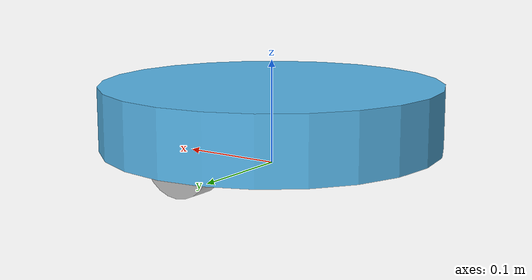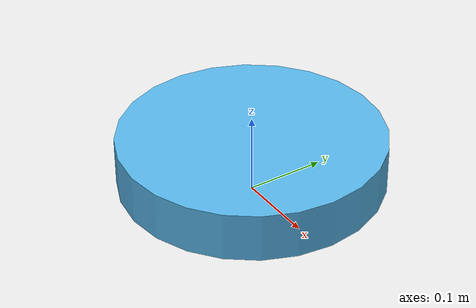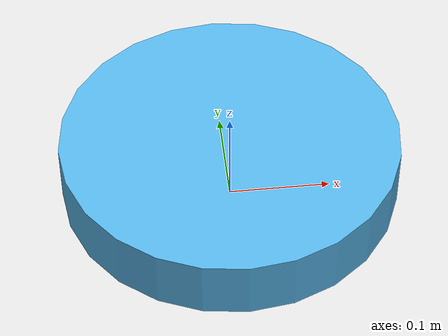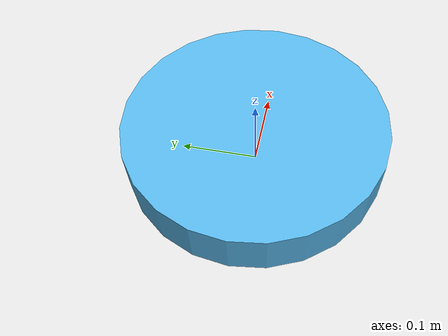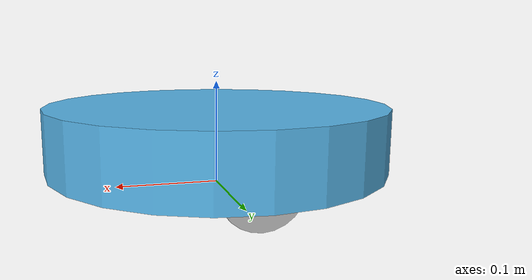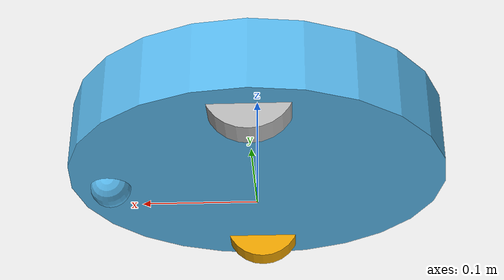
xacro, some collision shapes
<?xml version="1.0" ?>
<robot name="create_1" xmlns:xacro="http://ros.org/wiki/xacro">

    <link name="base_footprint">
    <visual>
      <origin xyz="0 0 0" rpy="0 0 0" />
      <geometry>
        <box size="0.001 0.001 0.001" />
      </geometry>
    </visual>

    <collision>
      <origin xyz="0 0 0.017" rpy="0 0 0" />
      <geometry>
        <box size="0.001 0.001 0.001" />
      </geometry>
    </collision>
    </link>

    <link name="base_link">
    <inertial>
      <mass value="2" />
      <origin xyz="0 0 0.0" />
      <inertia ixx="0.01" ixy="0.0" ixz="0.0" iyy="0.01" iyz="0.0" izz="0.5" />
    </inertial>

    <visual>
      <origin xyz=" 0 0 0.0308" rpy="0 0 0" />
      <geometry>
        <mesh filename="package://gazebo_sim/meshes/create_2.dae" />
      </geometry>
    </visual>

    <collision>
      <origin xyz="0.0 0.0 0.0308" rpy="0 0 0" />
      <geometry>
        <cylinder length="0.0611632" radius="0.16495" />
      </geometry>
    </collision>
    </link>

    <link name="wall_sensor_link">
    <inertial>
      <mass value="0.01" />
      <origin xyz="0 0 0" />
      <inertia ixx="0.001" ixy="0.0" ixz="0.0" iyy="0.001" iyz="0.0" izz="0.001" />
    </inertial>
    </link>

    <link name="left_cliff_sensor_link">
    <inertial>
      <mass value="0.01" />
      <origin xyz="0 0 0" />
      <inertia ixx="0.001" ixy="0.0" ixz="0.0" iyy="0.001" iyz="0.0" izz="0.001" />
    </inertial>
    </link>

    <link name="right_cliff_sensor_link">
    <inertial>
      <mass value="0.01" />
      <origin xyz="0 0 0" />
      <inertia ixx="0.001" ixy="0.0" ixz="0.0" iyy="0.001" iyz="0.0" izz="0.001" />
    </inertial>
    </link>

    <link name="leftfront_cliff_sensor_link">
    <inertial>
      <mass value="0.01" />
      <origin xyz="0 0 0" />
      <inertia ixx="1.0" ixy="0.0" ixz="0.0" iyy="0.01" iyz="0.0" izz="0.01" />
    </inertial>
    </link>

    <link name="rightfront_cliff_sensor_link">
    <inertial>
      <mass value="0.01" />
      <origin xyz="0 0 0" />
      <inertia ixx="0.001" ixy="0.0" ixz="0.0" iyy="0.001" iyz="0.0" izz="0.001" />
    </inertial>
    </link>

    <joint name="base_footprint_joint" type="fixed">
      <origin xyz="0 0 0.017" rpy="0 0 0" />
      <parent link="base_footprint" />
      <child link="base_link" />
    </joint>

    <joint name="base_wall_sensor_joint" type="fixed">
      <origin xyz="0.09 -0.120 0.042" rpy="0 0 -1.0" />
      <parent link="base_link" />
      <child link="wall_sensor_link" />
    </joint>

    <joint name="base_left_cliff_sensor_joint" type="fixed">
      <origin xyz="0.07 0.14 0.01" rpy="0 1.57 0" />
      <parent link="base_link" />
      <child link="left_cliff_sensor_link" />
    </joint>

    <joint name="base_right_cliff_sensor_joint" type="fixed">
      <origin xyz="0.07 -0.14 0.01" rpy="0 1.57 0" />
      <parent link="base_link" />
      <child link="right_cliff_sensor_link" />
    </joint>

    <joint name="base_leftfront_cliff_sensor_joint" type="fixed">
      <origin xyz="0.15 0.04 0.01" rpy="0 1.57 0" />
      <parent link="base_link" />
      <child link="leftfront_cliff_sensor_link" />
    </joint>

    <joint name="base_rightfront_cliff_sensor_joint" type="fixed">
      <origin xyz="0.15 -0.04 0.01" rpy="0 1.57 0" />
      <parent link="base_link" />
      <child link="rightfront_cliff_sensor_link" />
    </joint>

    <!--left wheel-->
    <link name="left_wheel_link">
    <inertial>
      <origin xyz="0 0 0" />
      <mass value="0.01" />
      <inertia ixx="0.001" ixy="0.0" ixz="0.0" iyy="0.001" iyz="0.0" izz="0.001" />
    </inertial>

    <visual>
      <origin xyz="0 0 0" rpy="0 1.57 1.57" />
      <geometry>
        <cylinder radius="0.036" length="0.024" />
      </geometry>
    </visual>

    <collision>
      <origin xyz="0 0 0" rpy="0 1.57 1.57" />
      <geometry>
        <cylinder radius="0.036" length="0.024" />
      </geometry>
    </collision>
    </link>

   <joint name="left_wheel_joint" type="continuous">
      <origin xyz="0 0.13 0.015" rpy="0 0 0" />
      <parent link="base_link" />
      <child link="left_wheel_link" />
      <axis xyz="0 1 0" />
    </joint>

    <!--left wheel-->
    <link name="right_wheel_link">
    <inertial>
      <origin xyz="0 0 0" />
      <mass value="0.01" />
      <inertia ixx="0.001" ixy="0.0" ixz="0.0" iyy="0.001" iyz="0.0" izz="0.001" />
    </inertial>

    <visual>
      <origin xyz="0 0 0" rpy="0 1.57 1.57" />
      <geometry>
        <cylinder radius="0.036" length="0.024" />
      </geometry>
    </visual>

    <collision>
      <origin xyz="0 0 0" rpy="0 1.57 1.57" />
      <geometry>
        <cylinder radius="0.036" length="0.024" />
      </geometry>
    </collision>
    </link>

   <joint name="right_wheel_joint" type="continuous">
      <origin xyz="0 -0.13 0.015" rpy="0 0 0" />
      <parent link="base_link" />
      <child link="right_wheel_link" />
      <axis xyz="0 1 0" />
    </joint>

    <!-- end of wheels-->

    <link name="front_wheel_link">
    <inertial>
      <origin xyz="0 0 0" />
      <mass value="0.01" />
      <inertia ixx="0.001" ixy="0.0" ixz="0.0" iyy="0.001" iyz="0.0" izz="0.001" />
    </inertial>

    <visual>
      <origin xyz="0 0 0" rpy="0 1.57 1.57" />
      <geometry>
        <sphere radius="0.018" />
      </geometry>
    </visual>

    <collision>
      <origin xyz="0 0 0" rpy="0 1.57 1.57" />
      <geometry>
        <sphere radius="0.018" />
      </geometry>
    </collision>
    </link>

    <!-- fixed because there's no transmission -->
    <joint name="front_castor_joint" type="fixed">
      <origin xyz="0.13 0 0.0" rpy="0 0 0" />
      <parent link="base_link" />
      <child link="front_wheel_link" />
      <axis xyz="0 1 0" />
    </joint>

    <joint name="gyro_joint" type="fixed">
      <axis xyz="0 1 0" />
      <origin xyz="0 0 0.04" rpy="0 0 0" />
      <parent link="base_link" />
      <child link="gyro_link" />
    </joint>
    <link name="gyro_link">
    <inertial>
      <mass value="0.001" />
      <origin xyz="0 0 0" rpy="0 0 0" />
      <inertia ixx="0.0001" ixy="0" ixz="0" iyy="0.000001" iyz="0" izz="0.0001" />
    </inertial>
    </link>

    <gazebo>
      <plugin name="differential_drive_controller" filename="libgazebo_ros_diff_drive.so">
        <alwaysOn>true</alwaysOn>
        <updateRate>40</updateRate>
        <leftJoint>left_wheel_joint</leftJoint>
        <rightJoint>right_wheel_joint</rightJoint>
        <wheelSeparation>0.26</wheelSeparation>
        <wheelDiameter>0.072</wheelDiameter>
        <wheelTorque>1</wheelTorque>
        <commandTopic>cmd_vel</commandTopic>
        <odometryTopic>odom</odometryTopic>
        <odometryFrame>odom</odometryFrame>
        <robotBaseFrame>base_footprint</robotBaseFrame>
      </plugin>

      <plugin name="p3d_base_controller" filename="libgazebo_ros_p3d.so">
        <alwaysOn>true</alwaysOn>
        <updateRate>100.0</updateRate>
        <bodyName>base_link</bodyName>
        <topicName>simple_controller/absolute_position</topicName>
        <gaussianNoise>0</gaussianNoise>
        <frameName>map</frameName>
        <xyzOffsets>0 0 0</xyzOffsets>
        <rpyOffsets>0 0 0</rpyOffsets>
      </plugin>
    </gazebo>

    <gazebo reference="left_wheel_link">
      <mu1>1.0</mu1>
      <mu2>1.0</mu2>
      <kp>1000000.0</kp>
      <kd>100.0</kd>
      <minDepth>0.001</minDepth>
      <maxVel>1.0</maxVel>
    </gazebo>

    <gazebo reference="right_wheel_link">
      <mu1>1.0</mu1>
      <mu2>1.0</mu2>
      <kp>1000000.0</kp>
      <kd>100.0</kd>
      <minDepth>0.001</minDepth>
      <maxVel>1.0</maxVel>
    </gazebo>
    <gazebo reference="rear_wheel_link">
      <mu1>0.0</mu1>
      <mu2>0.0</mu2>
      <kp>1000000.0</kp>
      <kd>100.0</kd>
      <minDepth>0.001</minDepth>
      <maxVel>1.0</maxVel>
    </gazebo>

    <gazebo reference="front_wheel_link">
      <mu1>0.0</mu1>
      <mu2>0.0</mu2>
      <kp>1000000.0</kp>
      <kd>100.0</kd>
      <minDepth>0.001</minDepth>
      <maxVel>1.0</maxVel>
    </gazebo>

    <gazebo>
      <plugin name="imu_controller" filename="libgazebo_ros_imu.so">
        <alwaysOn>true</alwaysOn>
        <updateRate>30</updateRate>
        <bodyName>gyro_link</bodyName>
        <topicName>imu/data</topicName>
        <serviceName>imu/is_calibrated</serviceName>
        <gaussianNoise>0.00000289</gaussianNoise>
        <xyzOffsets>0 0 0</xyzOffsets>
        <rpyOffsets>0 0 0</rpyOffsets>
      </plugin>
    </gazebo>

    <gazebo reference="wall_sensor_link">
      <sensor type="ray" name="wall_sensor">
        <always_on>true</always_on>
        <update_rate>20.0</update_rate>
        <pose>0 0 0 0 0 0</pose>
        <visualize>false</visualize>
        <ray>
          <scan>
            <horizontal>
              <samples>1</samples>
              <resolution>1</resolution>
              <min_angle>0</min_angle>
              <max_angle>0</max_angle>
            </horizontal>
          </scan>
          <range>
            <min>0.0160</min>
            <max>0.04</max>
            <resolution>0.1</resolution>
          </range>
        </ray>
      </sensor>
    </gazebo>

    <gazebo reference="left_cliff_sensor_link">
      <sensor type="ray" name="left_cliff_sensor">
        <always_on>true</always_on>
        <update_rate>20.0</update_rate>
        <pose>0 0 0 0 0 0</pose>
        <visualize>false</visualize>
        <ray>
          <scan>
            <horizontal>
              <samples>1</samples>
              <resolution>1</resolution>
              <min_angle>0</min_angle>
              <max_angle>0</max_angle>
            </horizontal>
          </scan>
          <range>
            <min>0.01</min>
            <max>0.04</max>
            <resolution>0.1</resolution>
          </range>
        </ray>
      </sensor>
    </gazebo>

    <gazebo reference="right_cliff_sensor_link">
      <sensor type="ray" name="right_cliff_sensor">
        <always_on>true</always_on>
        <update_rate>20.0</update_rate>
        <pose>0 0 0 0 0 0</pose>
        <visualize>false</visualize>
        <ray>
          <scan>
            <horizontal>
              <samples>1</samples>
              <resolution>1</resolution>
              <min_angle>0</min_angle>
              <max_angle>0</max_angle>
            </horizontal>
          </scan>
          <range>
            <min>0.01</min>
            <max>0.04</max>
            <resolution>0.1</resolution>
          </range>
        </ray>
      </sensor>
    </gazebo>

    <gazebo reference="leftfront_cliff_sensor_link">
      <sensor type="ray" name="leftfront_cliff_sensor">
        <always_on>true</always_on>
        <update_rate>20.0</update_rate>
        <pose>0 0 0 0 0 0</pose>
        <visualize>false</visualize>
        <ray>
          <scan>
            <horizontal>
              <samples>1</samples>
              <resolution>1</resolution>
              <min_angle>0</min_angle>
              <max_angle>0</max_angle>
            </horizontal>
          </scan>
          <range>
            <min>0.01</min>
            <max>0.04</max>
            <resolution>0.1</resolution>
          </range>
        </ray>
      </sensor>
    </gazebo>

    <gazebo reference="rightfront_cliff_sensor_link">
      <sensor type="ray" name="rightfront_cliff_sensor">
        <always_on>true</always_on>
        <update_rate>20.0</update_rate>
        <pose>0 0 0 0 0 0</pose>
        <visualize>false</visualize>
        <ray>
          <scan>
            <horizontal>
              <samples>1</samples>
              <resolution>1</resolution>
              <min_angle>0</min_angle>
              <max_angle>0</max_angle>
            </horizontal>
          </scan>
          <range>
            <min>0.01</min>
            <max>0.04</max>
            <resolution>0.1</resolution>
          </range>
        </ray>
      </sensor>
    </gazebo>

</robot>
